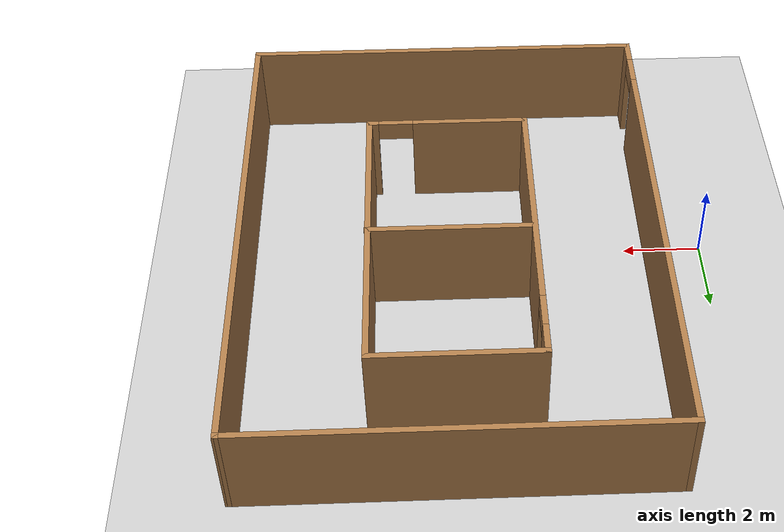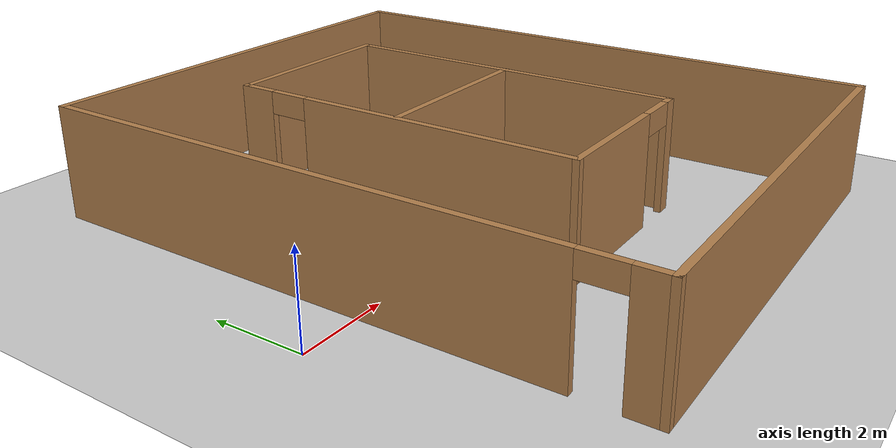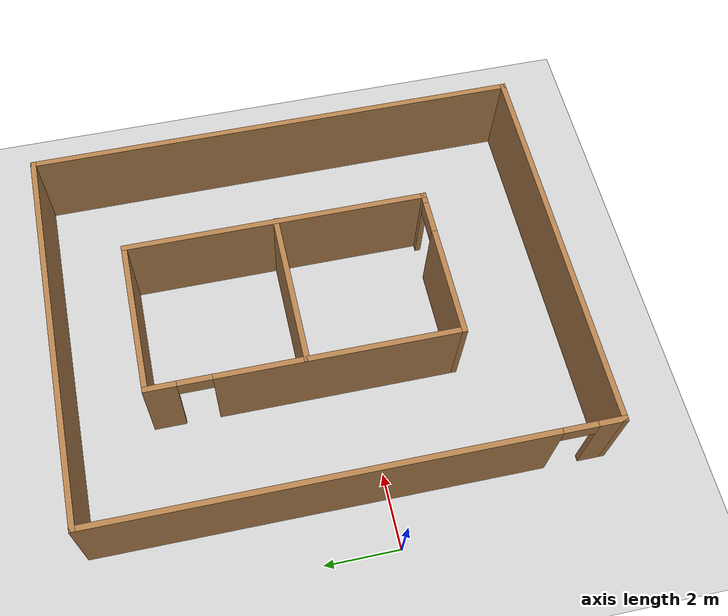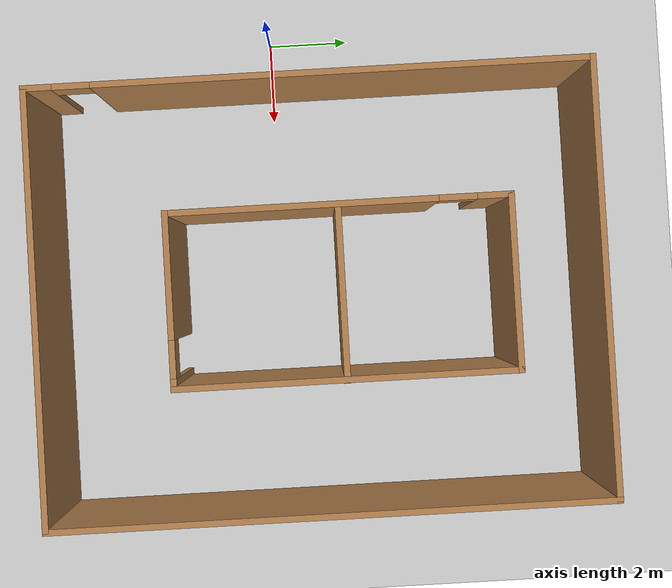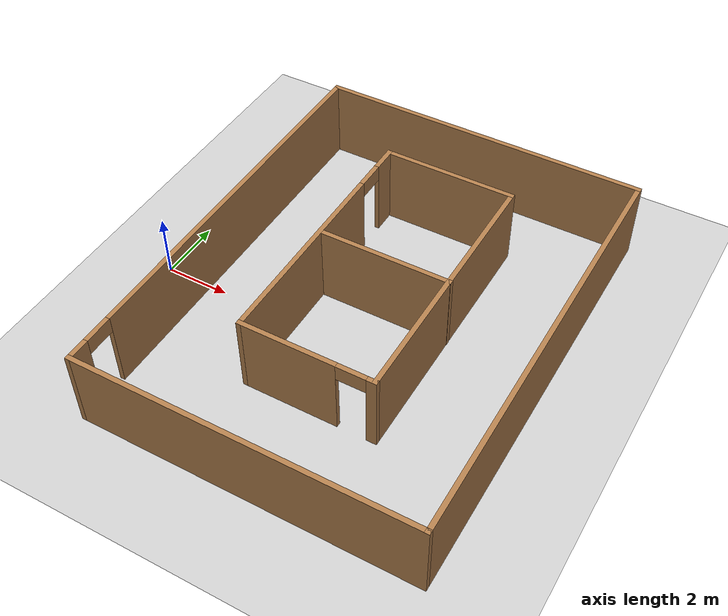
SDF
<sdf version="1.7">
 <world name="default">
  <light name="sun" type="directional">
   <pose>0 0 10 0 -0 0</pose>
   <diffuse>0.8 0.8 0.8 1</diffuse>
   <specular>0.2 0.2 0.2 1</specular>
   <attenuation>
    <range>1000</range>
    <constant>0.9</constant>
    <linear>0.01</linear>
    <quadratic>0.001</quadratic>
   </attenuation>
   <direction>-0.5 0.1 -0.9</direction>
   <spot><inner_angle>0</inner_angle><outer_angle>0</outer_angle><falloff>0</falloff></spot>
  </light>
  <model name="ground_plane">
   <static>1</static>
   <link name="link">
    <collision name="collision">
     <geometry><plane><normal>0 0 1</normal><size>100 100</size></plane></geometry>
     <surface>
      <contact><collide_bitmask>65535</collide_bitmask></contact>
      <friction><ode><mu>100</mu><mu2>50</mu2></ode></friction>
     </surface>
    </collision>
    <visual name="visual">
     <cast_shadows>0</cast_shadows>
     <geometry><plane><normal>0 0 1</normal><size>100 100</size></plane></geometry>
     <material>
      <script><uri>file://media/materials/scripts/gazebo.material</uri><name>Gazebo/Grey</name></script>
     </material>
    </visual>
   </link>
  </model>
  <gravity>0 0 -9.8</gravity>
  <magnetic_field>6e-06 2.3e-05 -4.2e-05</magnetic_field>
  <atmosphere type="adiabatic"/>
  <physics type="ode">
   <max_step_size>0.001</max_step_size>
   <real_time_factor>1</real_time_factor>
   <real_time_update_rate>1000</real_time_update_rate>
  </physics>
  <scene><ambient>0.4 0.4 0.4 1</ambient><background>0.7 0.7 0.7 1</background><shadows>1</shadows></scene>
  <audio><device>default</device></audio>
  <spherical_coordinates>
   <surface_model>EARTH_WGS84</surface_model>
   <latitude_deg>0</latitude_deg>
   <longitude_deg>0</longitude_deg>
   <elevation>0</elevation>
   <heading_deg>0</heading_deg>
  </spherical_coordinates>
  <model name="O_Ruangan">
   <pose>6.59472 0.964484 0 0 -0 0</pose>
   <link name="Wall_11">
    <collision name="Wall_11_Collision">
     <geometry><box><size>10.5 0.15 2.5</size></box></geometry>
     <pose>0 0 1.25 0 -0 0</pose>
    </collision>
    <visual name="Wall_11_Visual">
     <pose>0 0 1.25 0 -0 0</pose>
     <geometry><box><size>10.5 0.15 2.5</size></box></geometry>
     <material>
      <script><uri>file://media/materials/scripts/gazebo.material</uri><name>Gazebo/Wood</name></script>
      <ambient>1 1 1 1</ambient>
     </material>
     <meta><layer>0</layer></meta>
    </visual>
    <pose>0 6.675 0 0 -0 0</pose>
   </link>
   <link name="Wall_13">
    <collision name="Wall_13_Collision">
     <geometry><box><size>13.5 0.15 2.5</size></box></geometry>
     <pose>0 0 1.25 0 -0 0</pose>
    </collision>
    <visual name="Wall_13_Visual">
     <pose>0 0 1.25 0 -0 0</pose>
     <geometry><box><size>13.5 0.15 2.5</size></box></geometry>
     <material>
      <script><uri>file://media/materials/scripts/gazebo.material</uri><name>Gazebo/Wood</name></script>
      <ambient>1 1 1 1</ambient>
     </material>
     <meta><layer>0</layer></meta>
    </visual>
    <pose>5.175 0 0 0 -0 -1.5708</pose>
   </link>
   <link name="Wall_15">
    <collision name="Wall_15_Collision">
     <geometry><box><size>10.5 0.15 2.5</size></box></geometry>
     <pose>0 0 1.25 0 -0 0</pose>
    </collision>
    <visual name="Wall_15_Visual">
     <pose>0 0 1.25 0 -0 0</pose>
     <geometry><box><size>10.5 0.15 2.5</size></box></geometry>
     <material>
      <script><uri>file://media/materials/scripts/gazebo.material</uri><name>Gazebo/Wood</name></script>
      <ambient>1 1 1 1</ambient>
     </material>
     <meta><layer>0</layer></meta>
    </visual>
    <pose>0 -6.675 0 0 -0 3.14159</pose>
   </link>
   <link name="Wall_16">
    <pose>-5.175 0 0 0 -0 1.5708</pose>
    <visual name="Wall_16_Visual_0">
     <pose>-6.3798 0 1.25 0 -0 0</pose>
     <geometry><box><size>0.740409 0.15 2.5</size></box></geometry>
     <material>
      <script><uri>file://media/materials/scripts/gazebo.material</uri><name>Gazebo/Wood</name></script>
      <ambient>1 1 1 1</ambient>
     </material>
     <meta><layer>0</layer></meta>
    </visual>
    <collision name="Wall_16_Collision_0">
     <geometry><box><size>0.740409 0.15 2.5</size></box></geometry>
     <pose>-6.3798 0 1.25 0 -0 0</pose>
    </collision>
    <visual name="Wall_16_Visual_1">
     <pose>0.820204 0 1.25 0 -0 0</pose>
     <geometry><box><size>11.8596 0.15 2.5</size></box></geometry>
     <material>
      <script><uri>file://media/materials/scripts/gazebo.material</uri><name>Gazebo/Wood</name></script>
      <ambient>1 1 1 1</ambient>
     </material>
     <meta><layer>0</layer></meta>
    </visual>
    <collision name="Wall_16_Collision_1">
     <geometry><box><size>11.8596 0.15 2.5</size></box></geometry>
     <pose>0.820204 0 1.25 0 -0 0</pose>
    </collision>
    <visual name="Wall_16_Visual_2">
     <pose>-5.55959 0 2.25 0 -0 0</pose>
     <geometry><box><size>0.9 0.15 0.5</size></box></geometry>
     <material>
      <script><uri>file://media/materials/scripts/gazebo.material</uri><name>Gazebo/Wood</name></script>
      <ambient>1 1 1 1</ambient>
     </material>
     <meta><layer>0</layer></meta>
    </visual>
    <collision name="Wall_16_Collision_2">
     <geometry><box><size>0.9 0.15 0.5</size></box></geometry>
     <pose>-5.55959 0 2.25 0 -0 0</pose>
    </collision>
   </link>
   <link name="Wall_23">
    <collision name="Wall_23_Collision">
     <geometry><box><size>4.25 0.15 2.5</size></box></geometry>
     <pose>0 0 1.25 0 -0 0</pose>
    </collision>
    <visual name="Wall_23_Visual">
     <pose>0 0 1.25 0 -0 0</pose>
     <geometry><box><size>4.25 0.15 2.5</size></box></geometry>
     <material>
      <script><uri>file://media/materials/scripts/gazebo.material</uri><name>Gazebo/Wood</name></script>
      <ambient>1 1 1 1</ambient>
     </material>
     <meta><layer>0</layer></meta>
    </visual>
    <pose>-0.019696 4.57674 0 0 -0 0</pose>
   </link>
   <link name="Wall_24">
    <collision name="Wall_24_Collision">
     <geometry><box><size>8.25 0.15 2.5</size></box></geometry>
     <pose>0 0 1.25 0 -0 0</pose>
    </collision>
    <visual name="Wall_24_Visual">
     <pose>0 0 1.25 0 -0 0</pose>
     <geometry><box><size>8.25 0.15 2.5</size></box></geometry>
     <material>
      <script><uri>file://media/materials/scripts/gazebo.material</uri><name>Gazebo/Wood</name></script>
      <ambient>1 1 1 1</ambient>
     </material>
     <meta><layer>0</layer></meta>
    </visual>
    <pose>2.0303 0.526736 0 0 -0 -1.5708</pose>
   </link>
   <link name="Wall_27">
    <pose>-0.019696 -3.52326 0 0 -0 3.14159</pose>
    <visual name="Wall_27_Visual_0">
     <pose>-1.96659 0 1.25 0 -0 0</pose>
     <geometry><box><size>0.316818 0.15 2.5</size></box></geometry>
     <material>
      <script><uri>file://media/materials/scripts/gazebo.material</uri><name>Gazebo/Wood</name></script>
      <ambient>1 1 1 1</ambient>
     </material>
     <meta><layer>0</layer></meta>
    </visual>
    <collision name="Wall_27_Collision_0">
     <geometry><box><size>0.316818 0.15 2.5</size></box></geometry>
     <pose>-1.96659 0 1.25 0 -0 0</pose>
    </collision>
    <visual name="Wall_27_Visual_1">
     <pose>0.608409 0 1.25 0 -0 0</pose>
     <geometry><box><size>3.03318 0.15 2.5</size></box></geometry>
     <material>
      <script><uri>file://media/materials/scripts/gazebo.material</uri><name>Gazebo/Wood</name></script>
      <ambient>1 1 1 1</ambient>
     </material>
     <meta><layer>0</layer></meta>
    </visual>
    <collision name="Wall_27_Collision_1">
     <geometry><box><size>3.03318 0.15 2.5</size></box></geometry>
     <pose>0.608409 0 1.25 0 -0 0</pose>
    </collision>
    <visual name="Wall_27_Visual_2">
     <pose>-1.35818 0 2.25 0 -0 0</pose>
     <geometry><box><size>0.9 0.15 0.5</size></box></geometry>
     <material>
      <script><uri>file://media/materials/scripts/gazebo.material</uri><name>Gazebo/Wood</name></script>
      <ambient>1 1 1 1</ambient>
     </material>
     <meta><layer>0</layer></meta>
    </visual>
    <collision name="Wall_27_Collision_2">
     <geometry><box><size>0.9 0.15 0.5</size></box></geometry>
     <pose>-1.35818 0 2.25 0 -0 0</pose>
    </collision>
   </link>
   <link name="Wall_28">
    <pose>-2.0697 0.526736 0 0 -0 1.5708</pose>
    <visual name="Wall_28_Visual_0">
     <pose>-0.88055 0 1.25 0 -0 0</pose>
     <geometry><box><size>6.4889 0.15 2.5</size></box></geometry>
     <material>
      <script><uri>file://media/materials/scripts/gazebo.material</uri><name>Gazebo/Wood</name></script>
      <ambient>1 1 1 1</ambient>
     </material>
     <meta><layer>0</layer></meta>
    </visual>
    <collision name="Wall_28_Collision_0">
     <geometry><box><size>6.4889 0.15 2.5</size></box></geometry>
     <pose>-0.88055 0 1.25 0 -0 0</pose>
    </collision>
    <visual name="Wall_28_Visual_1">
     <pose>3.69445 0 1.25 0 -0 0</pose>
     <geometry><box><size>0.8611 0.15 2.5</size></box></geometry>
     <material>
      <script><uri>file://media/materials/scripts/gazebo.material</uri><name>Gazebo/Wood</name></script>
      <ambient>1 1 1 1</ambient>
     </material>
     <meta><layer>0</layer></meta>
    </visual>
    <collision name="Wall_28_Collision_1">
     <geometry><box><size>0.8611 0.15 2.5</size></box></geometry>
     <pose>3.69445 0 1.25 0 -0 0</pose>
    </collision>
    <visual name="Wall_28_Visual_2">
     <pose>2.8139 0 2.25 0 -0 0</pose>
     <geometry><box><size>0.9 0.15 0.5</size></box></geometry>
     <material>
      <script><uri>file://media/materials/scripts/gazebo.material</uri><name>Gazebo/Wood</name></script>
      <ambient>1 1 1 1</ambient>
     </material>
     <meta><layer>0</layer></meta>
    </visual>
    <collision name="Wall_28_Collision_2">
     <geometry><box><size>0.9 0.15 0.5</size></box></geometry>
     <pose>2.8139 0 2.25 0 -0 0</pose>
    </collision>
   </link>
   <link name="Wall_31">
    <collision name="Wall_31_Collision">
     <geometry><box><size>4.25 0.15 2.5</size></box></geometry>
     <pose>0 0 1.25 0 -0 0</pose>
    </collision>
    <visual name="Wall_31_Visual">
     <pose>0 0 1.25 0 -0 0</pose>
     <geometry><box><size>4.25 0.15 2.5</size></box></geometry>
     <material>
      <script><uri>file://media/materials/scripts/gazebo.material</uri><name>Gazebo/Wood</name></script>
      <ambient>1 1 1 1</ambient>
     </material>
     <meta><layer>0</layer></meta>
    </visual>
    <pose>-0.008703 0.521108 0 0 -0 0</pose>
   </link>
   <static>1</static>
  </model>
 </world>
</sdf>
